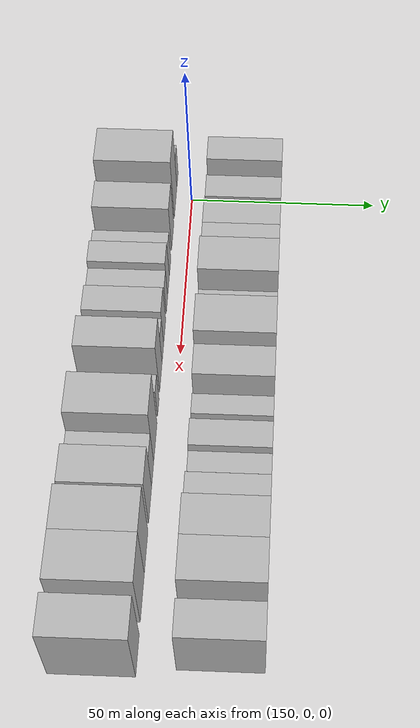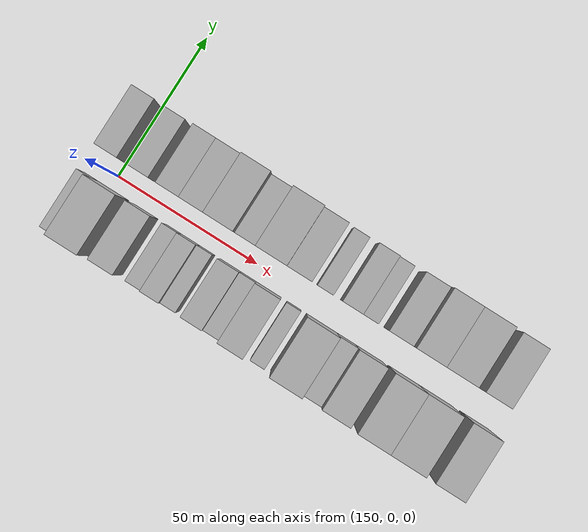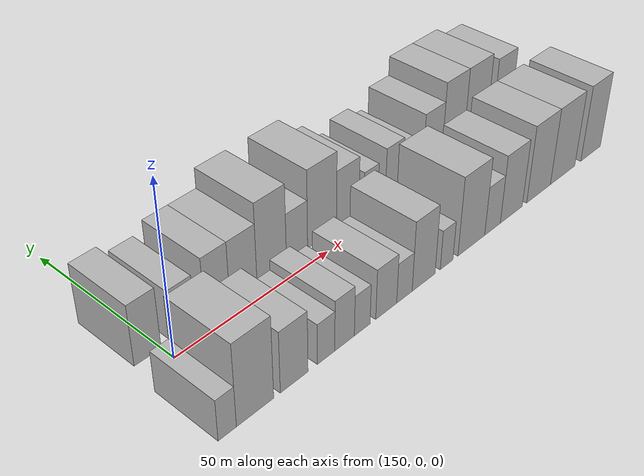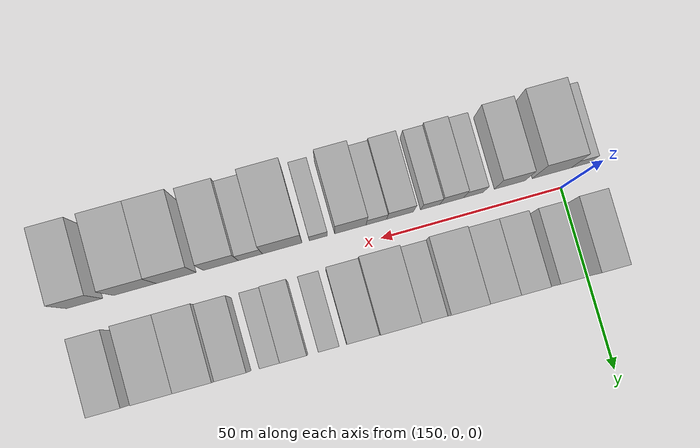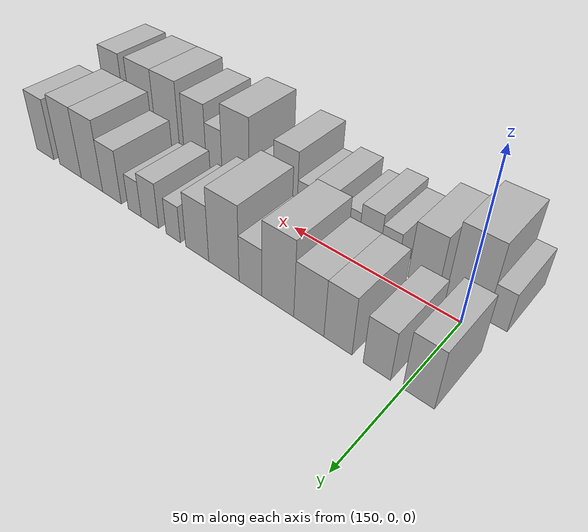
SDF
<sdf version="1.6">
 <world name="default">
  <model name="building_15">
   <static>1</static>
   <pose>146.2488 14.5000 0 0.000000 0.000000 1.570796</pose>
   <link name="link">
    <pose>0 0 9.00 0 0 0</pose>
    <collision name="collision"><geometry><box><size>20.0000 7.7191 18.0000</size></box></geometry></collision>
    <visual name="visual">
     <cast_shadows>0</cast_shadows>
     <geometry><box><size>20.0000 7.7191 18.0000</size></box></geometry>
     <material>
      <script>
       <uri>model://HANNAS_wall/materials/scripts</uri>
       <uri>model://HANNAS_wall/materials/textures</uri>
       <name>vrc/HANNAS_wall</name>
      </script>
     </material>
    </visual>
   </link>
  </model>
  <model name="building_16">
   <static>1</static>
   <pose>156.6767 14.5000 0 0.000000 0.000000 1.570796</pose>
   <link name="link">
    <pose>0 0 7.50 0 0 0</pose>
    <collision name="collision"><geometry><box><size>20.0000 7.1368 15.0000</size></box></geometry></collision>
    <visual name="visual">
     <cast_shadows>0</cast_shadows>
     <geometry><box><size>20.0000 7.1368 15.0000</size></box></geometry>
     <material>
      <script>
       <uri>model://HANNAS_wall/materials/scripts</uri>
       <uri>model://HANNAS_wall/materials/textures</uri>
       <name>vrc/HANNAS_wall</name>
      </script>
     </material>
    </visual>
   </link>
  </model>
  <model name="building_17">
   <static>1</static>
   <pose>167.1513 14.5000 0 0.000000 0.000000 1.570796</pose>
   <link name="link">
    <pose>0 0 9.00 0 0 0</pose>
    <collision name="collision"><geometry><box><size>20.0000 7.8124 18.0000</size></box></geometry></collision>
    <visual name="visual">
     <cast_shadows>0</cast_shadows>
     <geometry><box><size>20.0000 7.8124 18.0000</size></box></geometry>
     <material>
      <script>
       <uri>model://HANNAS_wall/materials/scripts</uri>
       <uri>model://HANNAS_wall/materials/textures</uri>
       <name>vrc/HANNAS_wall</name>
      </script>
     </material>
    </visual>
   </link>
  </model>
  <model name="building_18">
   <static>1</static>
   <pose>175.4930 14.5000 0 0.000000 0.000000 1.570796</pose>
   <link name="link">
    <pose>0 0 9.00 0 0 0</pose>
    <collision name="collision"><geometry><box><size>20.0000 8.8710 18.0000</size></box></geometry></collision>
    <visual name="visual">
     <cast_shadows>0</cast_shadows>
     <geometry><box><size>20.0000 8.8710 18.0000</size></box></geometry>
     <material>
      <script>
       <uri>model://HANNAS_wall/materials/scripts</uri>
       <uri>model://HANNAS_wall/materials/textures</uri>
       <name>vrc/HANNAS_wall</name>
      </script>
     </material>
    </visual>
   </link>
  </model>
  <model name="building_19">
   <static>1</static>
   <pose>184.9338 14.5000 0 0.000000 0.000000 1.570796</pose>
   <link name="link">
    <pose>0 0 12.00 0 0 0</pose>
    <collision name="collision"><geometry><box><size>20.0000 10.0105 24.0000</size></box></geometry></collision>
    <visual name="visual">
     <cast_shadows>0</cast_shadows>
     <geometry><box><size>20.0000 10.0105 24.0000</size></box></geometry>
     <material>
      <script>
       <uri>model://HANNAS_wall/materials/scripts</uri>
       <uri>model://HANNAS_wall/materials/textures</uri>
       <name>vrc/HANNAS_wall</name>
      </script>
     </material>
    </visual>
   </link>
  </model>
  <model name="building_20">
   <static>1</static>
   <pose>193.6532 14.5000 0 0.000000 0.000000 1.570796</pose>
   <link name="link">
    <pose>0 0 7.50 0 0 0</pose>
    <collision name="collision"><geometry><box><size>20.0000 7.4284 15.0000</size></box></geometry></collision>
    <visual name="visual">
     <cast_shadows>0</cast_shadows>
     <geometry><box><size>20.0000 7.4284 15.0000</size></box></geometry>
     <material>
      <script>
       <uri>model://HANNAS_wall/materials/scripts</uri>
       <uri>model://HANNAS_wall/materials/textures</uri>
       <name>vrc/HANNAS_wall</name>
      </script>
     </material>
    </visual>
   </link>
  </model>
  <model name="building_21">
   <static>1</static>
   <pose>202.6494 14.5000 0 0.000000 0.000000 1.570796</pose>
   <link name="link">
    <pose>0 0 12.00 0 0 0</pose>
    <collision name="collision"><geometry><box><size>20.0000 10.5638 24.0000</size></box></geometry></collision>
    <visual name="visual">
     <cast_shadows>0</cast_shadows>
     <geometry><box><size>20.0000 10.5638 24.0000</size></box></geometry>
     <material>
      <script>
       <uri>model://HANNAS_wall/materials/scripts</uri>
       <uri>model://HANNAS_wall/materials/textures</uri>
       <name>vrc/HANNAS_wall</name>
      </script>
     </material>
    </visual>
   </link>
  </model>
  <model name="building_22">
   <static>1</static>
   <pose>212.1761 14.5000 0 0.000000 0.000000 1.570796</pose>
   <link name="link">
    <pose>0 0 9.00 0 0 0</pose>
    <collision name="collision"><geometry><box><size>20.0000 8.4896 18.0000</size></box></geometry></collision>
    <visual name="visual">
     <cast_shadows>0</cast_shadows>
     <geometry><box><size>20.0000 8.4896 18.0000</size></box></geometry>
     <material>
      <script>
       <uri>model://HANNAS_wall/materials/scripts</uri>
       <uri>model://HANNAS_wall/materials/textures</uri>
       <name>vrc/HANNAS_wall</name>
      </script>
     </material>
    </visual>
   </link>
  </model>
  <model name="building_23">
   <static>1</static>
   <pose>221.1869 14.5000 0 0.000000 0.000000 1.570796</pose>
   <link name="link">
    <pose>0 0 6.00 0 0 0</pose>
    <collision name="collision"><geometry><box><size>20.0000 5.5321 12.0000</size></box></geometry></collision>
    <visual name="visual">
     <cast_shadows>0</cast_shadows>
     <geometry><box><size>20.0000 5.5321 12.0000</size></box></geometry>
     <material>
      <script>
       <uri>model://HANNAS_wall/materials/scripts</uri>
       <uri>model://HANNAS_wall/materials/textures</uri>
       <name>vrc/HANNAS_wall</name>
      </script>
     </material>
    </visual>
   </link>
  </model>
  <model name="building_24">
   <static>1</static>
   <pose>230.4912 14.5000 0 0.000000 0.000000 1.570796</pose>
   <link name="link">
    <pose>0 0 7.50 0 0 0</pose>
    <collision name="collision"><geometry><box><size>20.0000 7.0765 15.0000</size></box></geometry></collision>
    <visual name="visual">
     <cast_shadows>0</cast_shadows>
     <geometry><box><size>20.0000 7.0765 15.0000</size></box></geometry>
     <material>
      <script>
       <uri>model://HANNAS_wall/materials/scripts</uri>
       <uri>model://HANNAS_wall/materials/textures</uri>
       <name>vrc/HANNAS_wall</name>
      </script>
     </material>
    </visual>
   </link>
  </model>
  <model name="building_25">
   <static>1</static>
   <pose>236.7713 14.5000 0 0.000000 0.000000 1.570796</pose>
   <link name="link">
    <pose>0 0 6.00 0 0 0</pose>
    <collision name="collision"><geometry><box><size>20.0000 5.4837 12.0000</size></box></geometry></collision>
    <visual name="visual">
     <cast_shadows>0</cast_shadows>
     <geometry><box><size>20.0000 5.4837 12.0000</size></box></geometry>
     <material>
      <script>
       <uri>model://HANNAS_wall/materials/scripts</uri>
       <uri>model://HANNAS_wall/materials/textures</uri>
       <name>vrc/HANNAS_wall</name>
      </script>
     </material>
    </visual>
   </link>
  </model>
  <model name="building_26">
   <static>1</static>
   <pose>246.6645 14.5000 0 0.000000 0.000000 1.570796</pose>
   <link name="link">
    <pose>0 0 9.00 0 0 0</pose>
    <collision name="collision"><geometry><box><size>20.0000 8.3027 18.0000</size></box></geometry></collision>
    <visual name="visual">
     <cast_shadows>0</cast_shadows>
     <geometry><box><size>20.0000 8.3027 18.0000</size></box></geometry>
     <material>
      <script>
       <uri>model://HANNAS_wall/materials/scripts</uri>
       <uri>model://HANNAS_wall/materials/textures</uri>
       <name>vrc/HANNAS_wall</name>
      </script>
     </material>
    </visual>
   </link>
  </model>
  <model name="building_27">
   <static>1</static>
   <pose>255.7784 14.5000 0 0.000000 0.000000 1.570796</pose>
   <link name="link">
    <pose>0 0 12.00 0 0 0</pose>
    <collision name="collision"><geometry><box><size>20.0000 9.9252 24.0000</size></box></geometry></collision>
    <visual name="visual">
     <cast_shadows>0</cast_shadows>
     <geometry><box><size>20.0000 9.9252 24.0000</size></box></geometry>
     <material>
      <script>
       <uri>model://HANNAS_wall/materials/scripts</uri>
       <uri>model://HANNAS_wall/materials/textures</uri>
       <name>vrc/HANNAS_wall</name>
      </script>
     </material>
    </visual>
   </link>
  </model>
  <model name="building_28">
   <static>1</static>
   <pose>266.0627 14.5000 0 0.000000 0.000000 1.570796</pose>
   <link name="link">
    <pose>0 0 12.00 0 0 0</pose>
    <collision name="collision"><geometry><box><size>20.0000 10.6435 24.0000</size></box></geometry></collision>
    <visual name="visual">
     <cast_shadows>0</cast_shadows>
     <geometry><box><size>20.0000 10.6435 24.0000</size></box></geometry>
     <material>
      <script>
       <uri>model://HANNAS_wall/materials/scripts</uri>
       <uri>model://HANNAS_wall/materials/textures</uri>
       <name>vrc/HANNAS_wall</name>
      </script>
     </material>
    </visual>
   </link>
  </model>
  <model name="building_29">
   <static>1</static>
   <pose>278.8211 14.5000 0 0.000000 0.000000 1.570796</pose>
   <link name="link">
    <pose>0 0 10.50 0 0 0</pose>
    <collision name="collision"><geometry><box><size>20.0000 8.8733 21.0000</size></box></geometry></collision>
    <visual name="visual">
     <cast_shadows>0</cast_shadows>
     <geometry><box><size>20.0000 8.8733 21.0000</size></box></geometry>
     <material>
      <script>
       <uri>model://HANNAS_wall/materials/scripts</uri>
       <uri>model://HANNAS_wall/materials/textures</uri>
       <name>vrc/HANNAS_wall</name>
      </script>
     </material>
    </visual>
   </link>
  </model>
  <model name="building_45">
   <static>1</static>
   <pose>143.2517 -14.5000 0 0.000000 0.000000 1.570796</pose>
   <link name="link">
    <pose>0 0 6.00 0 0 0</pose>
    <collision name="collision"><geometry><box><size>20.0000 5.1442 12.0000</size></box></geometry></collision>
    <visual name="visual">
     <cast_shadows>0</cast_shadows>
     <geometry><box><size>20.0000 5.1442 12.0000</size></box></geometry>
     <material>
      <script>
       <uri>model://HANNAS_wall/materials/scripts</uri>
       <uri>model://HANNAS_wall/materials/textures</uri>
       <name>vrc/HANNAS_wall</name>
      </script>
     </material>
    </visual>
   </link>
  </model>
  <model name="building_46">
   <static>1</static>
   <pose>151.2605 -14.5000 0 0.000000 0.000000 1.570796</pose>
   <link name="link">
    <pose>0 0 12.00 0 0 0</pose>
    <collision name="collision"><geometry><box><size>20.0000 10.8733 24.0000</size></box></geometry></collision>
    <visual name="visual">
     <cast_shadows>0</cast_shadows>
     <geometry><box><size>20.0000 10.8733 24.0000</size></box></geometry>
     <material>
      <script>
       <uri>model://HANNAS_wall/materials/scripts</uri>
       <uri>model://HANNAS_wall/materials/textures</uri>
       <name>vrc/HANNAS_wall</name>
      </script>
     </material>
    </visual>
   </link>
  </model>
  <model name="building_47">
   <static>1</static>
   <pose>162.9712 -14.5000 0 0.000000 0.000000 1.570796</pose>
   <link name="link">
    <pose>0 0 9.00 0 0 0</pose>
    <collision name="collision"><geometry><box><size>20.0000 8.5481 18.0000</size></box></geometry></collision>
    <visual name="visual">
     <cast_shadows>0</cast_shadows>
     <geometry><box><size>20.0000 8.5481 18.0000</size></box></geometry>
     <material>
      <script>
       <uri>model://HANNAS_wall/materials/scripts</uri>
       <uri>model://HANNAS_wall/materials/textures</uri>
       <name>vrc/HANNAS_wall</name>
      </script>
     </material>
    </visual>
   </link>
  </model>
  <model name="building_48">
   <static>1</static>
   <pose>173.0440 -14.5000 0 0.000000 0.000000 1.570796</pose>
   <link name="link">
    <pose>0 0 6.00 0 0 0</pose>
    <collision name="collision"><geometry><box><size>20.0000 5.5976 12.0000</size></box></geometry></collision>
    <visual name="visual">
     <cast_shadows>0</cast_shadows>
     <geometry><box><size>20.0000 5.5976 12.0000</size></box></geometry>
     <material>
      <script>
       <uri>model://HANNAS_wall/materials/scripts</uri>
       <uri>model://HANNAS_wall/materials/textures</uri>
       <name>vrc/HANNAS_wall</name>
      </script>
     </material>
    </visual>
   </link>
  </model>
  <model name="building_49">
   <static>1</static>
   <pose>179.1113 -14.5000 0 0.000000 0.000000 1.570796</pose>
   <link name="link">
    <pose>0 0 7.50 0 0 0</pose>
    <collision name="collision"><geometry><box><size>20.0000 6.5370 15.0000</size></box></geometry></collision>
    <visual name="visual">
     <cast_shadows>0</cast_shadows>
     <geometry><box><size>20.0000 6.5370 15.0000</size></box></geometry>
     <material>
      <script>
       <uri>model://HANNAS_wall/materials/scripts</uri>
       <uri>model://HANNAS_wall/materials/textures</uri>
       <name>vrc/HANNAS_wall</name>
      </script>
     </material>
    </visual>
   </link>
  </model>
  <model name="building_50">
   <static>1</static>
   <pose>185.0660 -14.5000 0 0.000000 0.000000 1.570796</pose>
   <link name="link">
    <pose>0 0 6.00 0 0 0</pose>
    <collision name="collision"><geometry><box><size>20.0000 5.3723 12.0000</size></box></geometry></collision>
    <visual name="visual">
     <cast_shadows>0</cast_shadows>
     <geometry><box><size>20.0000 5.3723 12.0000</size></box></geometry>
     <material>
      <script>
       <uri>model://HANNAS_wall/materials/scripts</uri>
       <uri>model://HANNAS_wall/materials/textures</uri>
       <name>vrc/HANNAS_wall</name>
      </script>
     </material>
    </visual>
   </link>
  </model>
  <model name="building_51">
   <static>1</static>
   <pose>193.4697 -14.5000 0 0.000000 0.000000 1.570796</pose>
   <link name="link">
    <pose>0 0 7.50 0 0 0</pose>
    <collision name="collision"><geometry><box><size>20.0000 7.4351 15.0000</size></box></geometry></collision>
    <visual name="visual">
     <cast_shadows>0</cast_shadows>
     <geometry><box><size>20.0000 7.4351 15.0000</size></box></geometry>
     <material>
      <script>
       <uri>model://HANNAS_wall/materials/scripts</uri>
       <uri>model://HANNAS_wall/materials/textures</uri>
       <name>vrc/HANNAS_wall</name>
      </script>
     </material>
    </visual>
   </link>
  </model>
  <model name="building_52">
   <static>1</static>
   <pose>200.0242 -14.5000 0 0.000000 0.000000 1.570796</pose>
   <link name="link">
    <pose>0 0 6.00 0 0 0</pose>
    <collision name="collision"><geometry><box><size>20.0000 5.6741 12.0000</size></box></geometry></collision>
    <visual name="visual">
     <cast_shadows>0</cast_shadows>
     <geometry><box><size>20.0000 5.6741 12.0000</size></box></geometry>
     <material>
      <script>
       <uri>model://HANNAS_wall/materials/scripts</uri>
       <uri>model://HANNAS_wall/materials/textures</uri>
       <name>vrc/HANNAS_wall</name>
      </script>
     </material>
    </visual>
   </link>
  </model>
  <model name="building_53">
   <static>1</static>
   <pose>207.1907 -14.5000 0 0.000000 0.000000 1.570796</pose>
   <link name="link">
    <pose>0 0 10.50 0 0 0</pose>
    <collision name="collision"><geometry><box><size>20.0000 8.6587 21.0000</size></box></geometry></collision>
    <visual name="visual">
     <cast_shadows>0</cast_shadows>
     <geometry><box><size>20.0000 8.6587 21.0000</size></box></geometry>
     <material>
      <script>
       <uri>model://HANNAS_wall/materials/scripts</uri>
       <uri>model://HANNAS_wall/materials/textures</uri>
       <name>vrc/HANNAS_wall</name>
      </script>
     </material>
    </visual>
   </link>
  </model>
  <model name="building_54">
   <static>1</static>
   <pose>216.0102 -14.5000 0 0.000000 0.000000 1.570796</pose>
   <link name="link">
    <pose>0 0 6.00 0 0 0</pose>
    <collision name="collision"><geometry><box><size>20.0000 4.9803 12.0000</size></box></geometry></collision>
    <visual name="visual">
     <cast_shadows>0</cast_shadows>
     <geometry><box><size>20.0000 4.9803 12.0000</size></box></geometry>
     <material>
      <script>
       <uri>model://HANNAS_wall/materials/scripts</uri>
       <uri>model://HANNAS_wall/materials/textures</uri>
       <name>vrc/HANNAS_wall</name>
      </script>
     </material>
    </visual>
   </link>
  </model>
  <model name="building_55">
   <static>1</static>
   <pose>225.9663 -14.5000 0 0.000000 0.000000 1.570796</pose>
   <link name="link">
    <pose>0 0 12.00 0 0 0</pose>
    <collision name="collision"><geometry><box><size>20.0000 10.9320 24.0000</size></box></geometry></collision>
    <visual name="visual">
     <cast_shadows>0</cast_shadows>
     <geometry><box><size>20.0000 10.9320 24.0000</size></box></geometry>
     <material>
      <script>
       <uri>model://HANNAS_wall/materials/scripts</uri>
       <uri>model://HANNAS_wall/materials/textures</uri>
       <name>vrc/HANNAS_wall</name>
      </script>
     </material>
    </visual>
   </link>
  </model>
  <model name="building_56">
   <static>1</static>
   <pose>234.7509 -14.5000 0 0.000000 0.000000 1.570796</pose>
   <link name="link">
    <pose>0 0 7.50 0 0 0</pose>
    <collision name="collision"><geometry><box><size>20.0000 6.6372 15.0000</size></box></geometry></collision>
    <visual name="visual">
     <cast_shadows>0</cast_shadows>
     <geometry><box><size>20.0000 6.6372 15.0000</size></box></geometry>
     <material>
      <script>
       <uri>model://HANNAS_wall/materials/scripts</uri>
       <uri>model://HANNAS_wall/materials/textures</uri>
       <name>vrc/HANNAS_wall</name>
      </script>
     </material>
    </visual>
   </link>
  </model>
  <model name="building_57">
   <static>1</static>
   <pose>242.8793 -14.5000 0 0.000000 0.000000 1.570796</pose>
   <link name="link">
    <pose>0 0 10.50 0 0 0</pose>
    <collision name="collision"><geometry><box><size>20.0000 9.6196 21.0000</size></box></geometry></collision>
    <visual name="visual">
     <cast_shadows>0</cast_shadows>
     <geometry><box><size>20.0000 9.6196 21.0000</size></box></geometry>
     <material>
      <script>
       <uri>model://HANNAS_wall/materials/scripts</uri>
       <uri>model://HANNAS_wall/materials/textures</uri>
       <name>vrc/HANNAS_wall</name>
      </script>
     </material>
    </visual>
   </link>
  </model>
  <model name="building_58">
   <static>1</static>
   <pose>255.1526 -14.5000 0 0.000000 0.000000 1.570796</pose>
   <link name="link">
    <pose>0 0 12.00 0 0 0</pose>
    <collision name="collision"><geometry><box><size>20.0000 10.9271 24.0000</size></box></geometry></collision>
    <visual name="visual">
     <cast_shadows>0</cast_shadows>
     <geometry><box><size>20.0000 10.9271 24.0000</size></box></geometry>
     <material>
      <script>
       <uri>model://HANNAS_wall/materials/scripts</uri>
       <uri>model://HANNAS_wall/materials/textures</uri>
       <name>vrc/HANNAS_wall</name>
      </script>
     </material>
    </visual>
   </link>
  </model>
  <model name="building_59">
   <static>1</static>
   <pose>266.4928 -14.5000 0 0.000000 0.000000 1.570796</pose>
   <link name="link">
    <pose>0 0 12.00 0 0 0</pose>
    <collision name="collision"><geometry><box><size>20.0000 11.7532 24.0000</size></box></geometry></collision>
    <visual name="visual">
     <cast_shadows>0</cast_shadows>
     <geometry><box><size>20.0000 11.7532 24.0000</size></box></geometry>
     <material>
      <script>
       <uri>model://HANNAS_wall/materials/scripts</uri>
       <uri>model://HANNAS_wall/materials/textures</uri>
       <name>vrc/HANNAS_wall</name>
      </script>
     </material>
    </visual>
   </link>
  </model>
  <model name="building_60">
   <static>1</static>
   <pose>280.3102 -14.5000 0 0.000000 0.000000 1.570796</pose>
   <link name="link">
    <pose>0 0 12.00 0 0 0</pose>
    <collision name="collision"><geometry><box><size>20.0000 9.8816 24.0000</size></box></geometry></collision>
    <visual name="visual">
     <cast_shadows>0</cast_shadows>
     <geometry><box><size>20.0000 9.8816 24.0000</size></box></geometry>
     <material>
      <script>
       <uri>model://HANNAS_wall/materials/scripts</uri>
       <uri>model://HANNAS_wall/materials/textures</uri>
       <name>vrc/HANNAS_wall</name>
      </script>
     </material>
    </visual>
   </link>
  </model>
 </world>
</sdf>
